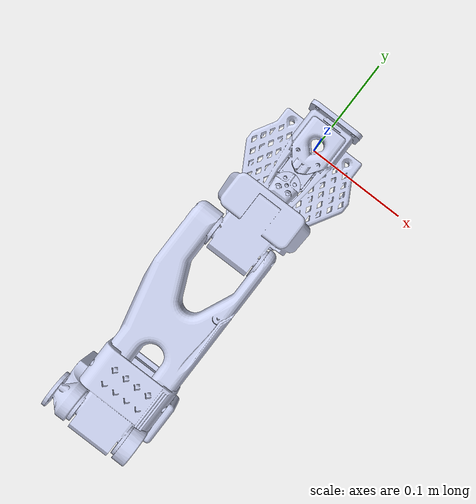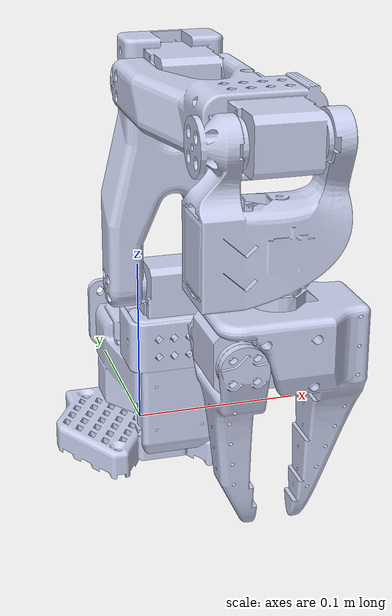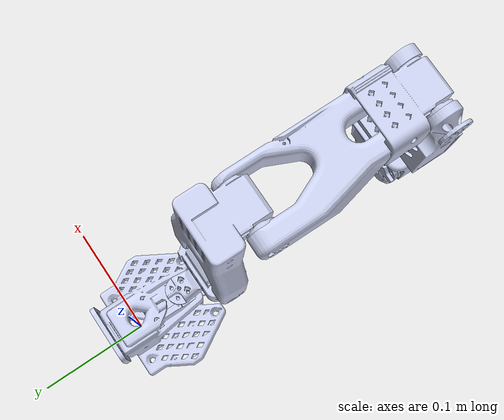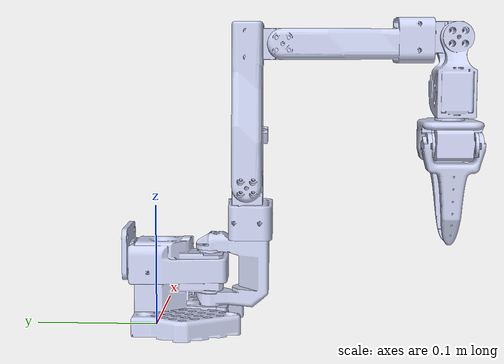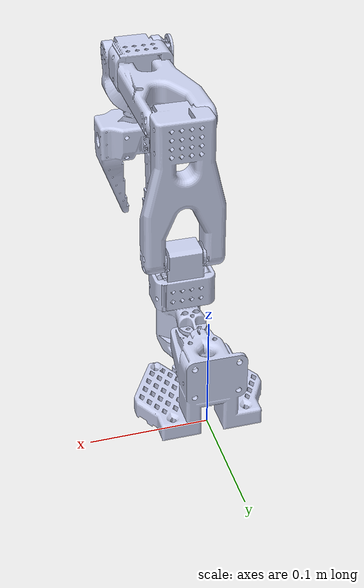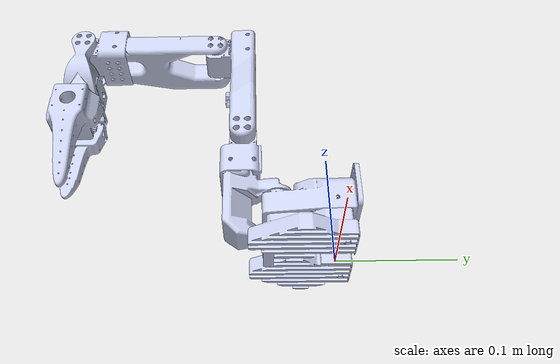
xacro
<?xml version="1.0"?>
<robot xmlns:xacro="http://www.ros.org/wiki/xacro" name="so_arm100">
    <xacro:arg name="initial_positions_file" default="initial_positions.yaml" />

    <!-- Import so_arm100 urdf file -->
    <xacro:include filename="$(find so_arm100_description)/urdf/so_arm100.urdf.xacro" />

    <!-- Import control_xacro -->
    <xacro:include filename="so_arm100.ros2_control.xacro" />

    <xacro:so_arm100_ros2_control name="FakeSystem" initial_positions_file="$(arg initial_positions_file)"/>

</robot>

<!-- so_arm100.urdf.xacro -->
<robot xmlns:xacro="http://ros.org/wiki/xacro" name="so_arm100">

  <!-- Include robot body (links and joints) -->
  <xacro:include filename="so_arm100_body.xacro"/>

  <!-- Include ros2_control configuration (hardcoded, no macro argument needed) -->
  <xacro:include filename="so_arm100_ros2_control.xacro"/>

</robot>

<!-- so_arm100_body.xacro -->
<robot xmlns:xacro="http://ros.org/wiki/xacro" name="so_arm100">

  <!-- Base Link -->
  <link name="base">
    <inertial>
      <origin xyz="-2.45960666746703E-07 0.0311418169687909 0.0175746661003382" rpy="0 0 0"/>
      <mass value="0.193184127927598"/>
      <inertia ixx="0.000137030709467877" ixy="2.10136126944992E-08" ixz="4.24087422551286E-09"
               iyy="0.000169089551209259" iyz="2.26514711036514E-05" izz="0.000145097720857224"/>
    </inertial>
    <visual>
      <origin xyz="0 0 0" rpy="0 0 0"/>
      <geometry>
        <mesh filename="package://so_arm100_description/meshes/Base.dae"/>
      </geometry>
      <material name="">
        <color rgba="0.792156862745098 0.819607843137255 0.933333333333333 1"/>
      </material>
    </visual>
    <collision>
      <origin xyz="0 0 0" rpy="0 0 0"/>
      <geometry>
        <mesh filename="package://so_arm100_description/meshes/Base.dae"/>
      </geometry>
    </collision>
  </link>

  <!-- Shoulder -->
  <link name="shoulder_link">
    <inertial>
      <origin xyz="-9.07886224712597E-05 0.0590971820568318 0.031089016892169" rpy="0 0 0"/>
      <mass value="0.119226314127197"/>
      <inertia ixx="5.90408775624429E-05" ixy="4.90800532852998E-07" ixz="-5.90451772654387E-08"
               iyy="3.21498601038881E-05" iyz="-4.58026206663885E-06" izz="5.86058514263952E-05"/>
    </inertial>
    <visual>
      <origin xyz="0 0 0" rpy="0 0 0"/>
      <geometry>
        <mesh filename="package://so_arm100_description/meshes/Rotation_Pitch.dae"/>
      </geometry>
      <material name="">
        <color rgba="0.792156862745098 0.819607843137255 0.933333333333333 1"/>
      </material>
    </visual>
    <collision>
      <origin xyz="0 0 0" rpy="0 0 0"/>
      <geometry>
        <mesh filename="package://so_arm100_description/meshes/Rotation_Pitch.dae"/>
      </geometry>
    </collision>
  </link>

  <joint name="shoulder_pan_joint" type="revolute">
    <origin xyz="0 -0.0452 0.0165" rpy="1.5708 0 0"/>
    <parent link="base"/>
    <child link="shoulder_link"/>
    <axis xyz="0 -1 0"/>
    <limit lower="-2.0" upper="2.0" effort="1" velocity="1"/>
  </joint>

  <!-- Upper Arm -->
  <link name="upper_arm_link">
    <inertial>
      <origin xyz="-1.7205170190925E-05 0.0701802156327694 0.00310545118155671" rpy="0 0 0"/>
      <mass value="0.162409284599177"/>
      <inertia ixx="0.000167153146617081" ixy="1.03902689187701E-06" ixz="-1.20161820645189E-08"
               iyy="7.01946992214245E-05" iyz="2.11884806298698E-06" izz="0.000213280241160769"/>
    </inertial>
    <visual>
      <origin xyz="0 0 0" rpy="0 0 0"/>
      <geometry>
        <mesh filename="package://so_arm100_description/meshes/Upper_Arm.dae"/>
      </geometry>
      <material name="">
        <color rgba="0.792156862745098 0.819607843137255 0.933333333333333 1"/>
      </material>
    </visual>
    <collision>
      <origin xyz="0 0 0" rpy="0 0 0"/>
      <geometry>
        <mesh filename="package://so_arm100_description/meshes/Upper_Arm.dae"/>
      </geometry>
    </collision>
  </link>

  <joint name="shoulder_lift_joint" type="revolute">
    <origin xyz="0 0.1025 0.0306" rpy="0 0 0"/>
    <parent link="shoulder_link"/>
    <child link="upper_arm_link"/>
    <axis xyz="1 0 0"/>
    <limit lower="-1.75" upper="1.75" effort="1" velocity="1"/>
  </joint>

  <!-- Forearm -->
  <link name="forearm_link">
    <inertial>
      <origin xyz="-0.00339603710186651 0.00137796353960074 0.0768006751156044" rpy="0 0 0"/>
      <mass value="0.147967774582291"/>
      <inertia ixx="0.000105333995841409" ixy="1.73059237226499E-07" ixz="-1.1720305455211E-05"
               iyy="0.000138766654485212" iyz="1.77429964684103E-06" izz="5.08741652515214E-05"/>
    </inertial>
    <visual>
      <origin xyz="0 0 0" rpy="0 0 0"/>
      <geometry>
        <mesh filename="package://so_arm100_description/meshes/Lower_Arm.dae"/>
      </geometry>
      <material name="">
        <color rgba="0.792156862745098 0.819607843137255 0.933333333333333 1"/>
      </material>
    </visual>
    <collision>
      <origin xyz="0 0 0" rpy="0 0 0"/>
      <geometry>
        <mesh filename="package://so_arm100_description/meshes/Lower_Arm.dae"/>
      </geometry>
    </collision>
  </link>

  <joint name="elbow_joint" type="revolute">
    <origin xyz="0 0.11257 0.028" rpy="0 0 0"/>
    <parent link="upper_arm_link"/>
    <child link="forearm_link"/>
    <axis xyz="1 0 0"/>
    <limit lower="-1.75" upper="1.57" effort="1" velocity="1"/>
  </joint>

  <!-- Wrist -->
  <link name="wrist_1_link">
    <inertial>
      <origin xyz="-0.00852653127372418 -0.0352278997897927 -2.34622481569413E-05" rpy="0 0 0"/>
      <mass value="0.066132067097723"/>
      <inertia ixx="1.95717492443445E-05" ixy="-6.62714374412293E-07" ixz="5.20089016442066E-09"
               iyy="2.38028417569933E-05" iyz="4.09549055863776E-08" izz="3.4540143384536E-05"/>
    </inertial>
    <visual>
      <origin xyz="0 0 0" rpy="0 0 0"/>
      <geometry>
        <mesh filename="package://so_arm100_description/meshes/Wrist_Pitch_Roll.dae"/>
      </geometry>
      <material name="">
        <color rgba="0.792156862745098 0.819607843137255 0.933333333333333 1"/>
      </material>
    </visual>
    <collision>
      <origin xyz="0 0 0" rpy="0 0 0"/>
      <geometry>
        <mesh filename="package://so_arm100_description/meshes/Wrist_Pitch_Roll.dae"/>
      </geometry>
    </collision>
  </link>

  <joint name="wrist_pitch_joint" type="revolute">
    <origin xyz="0 0.0052 0.1349" rpy="0 0 0"/>
    <parent link="forearm_link"/>
    <child link="wrist_1_link"/>
    <axis xyz="1 0 0"/>
    <limit lower="-3.5" upper="0.2" effort="1" velocity="1"/>
  </joint>

  <link name="wrist_2_link">
    <inertial>
      <origin xyz="0.00552376906426563 -0.0280167153359021 0.000483582592841092" rpy="0 0 0"/>
      <mass value="0.0929859131176897"/>
      <inertia ixx="4.3328249304211E-05" ixy="7.09654328670947E-06" ixz="5.99838530879484E-07"
               iyy="3.04451747368212E-05" iyz="-1.58743247545413E-07" izz="5.02460913506734E-05"/>
    </inertial>
    <visual>
      <origin xyz="0 0 0" rpy="0 0 0"/>
      <geometry>
        <mesh filename="package://so_arm100_description/meshes/Fixed_Jaw.dae"/>
      </geometry>
      <material name="">
        <color rgba="0.792156862745098 0.819607843137255 0.933333333333333 1"/>
      </material>
    </visual>
    <collision>
      <origin xyz="0 0 0" rpy="0 0 0"/>
      <geometry>
        <mesh filename="package://so_arm100_description/meshes/Fixed_Jaw.dae"/>
      </geometry>
    </collision>
  </link>

  <joint name="wrist_roll_joint" type="revolute">
    <origin xyz="0 -0.0601 0" rpy="0 0 0"/>
    <parent link="wrist_1_link"/>
    <child link="wrist_2_link"/>
    <axis xyz="0 1 0"/>
    <limit lower="-1.0" upper="4.0" effort="1" velocity="1"/>
  </joint>

  <!-- Jaw -->
  <link name="jaw_link">
    <inertial>
      <origin xyz="-0.00161744605468241 -0.0303472584046471 0.000449645961853651" rpy="0 0 0"/>
      <mass value="0.0202443794940372"/>
      <inertia ixx="1.10911325081525E-05" ixy="-5.35076503033314E-07" ixz="-9.46105662101403E-09"
               iyy="3.03576451001973E-06" iyz="-1.71146075110632E-07" izz="8.9916083370498E-06"/>
    </inertial>
    <visual>
      <origin xyz="0 0 0" rpy="0 0 0"/>
      <geometry>
        <mesh filename="package://so_arm100_description/meshes/Moving_Jaw.dae"/>
      </geometry>
      <material name="">
        <color rgba="0.792156862745098 0.819607843137255 0.933333333333333 1"/>
      </material>
    </visual>
    <collision>
      <origin xyz="0 0 0" rpy="0 0 0"/>
      <geometry>
        <mesh filename="package://so_arm100_description/meshes/Moving_Jaw.dae"/>
      </geometry>
    </collision>
  </link>

  <joint name="jaw_joint" type="revolute">
    <origin xyz="-0.0202 -0.0244 0" rpy="3.1416 0 3.1416"/>
    <parent link="wrist_2_link"/>
    <child link="jaw_link"/>
    <axis xyz="0 0 1"/>
    <limit lower="-0.22" upper="2.0" effort="1" velocity="1"/>
  </joint>

</robot>
